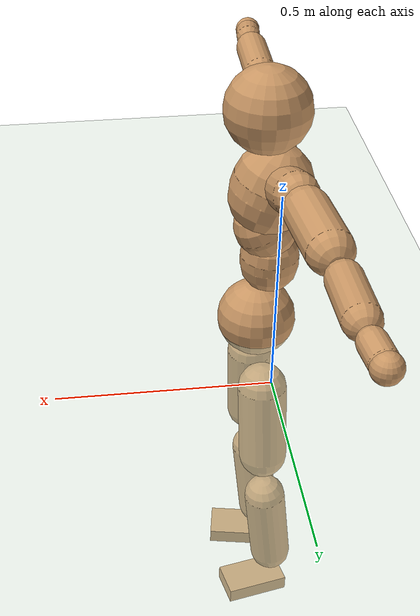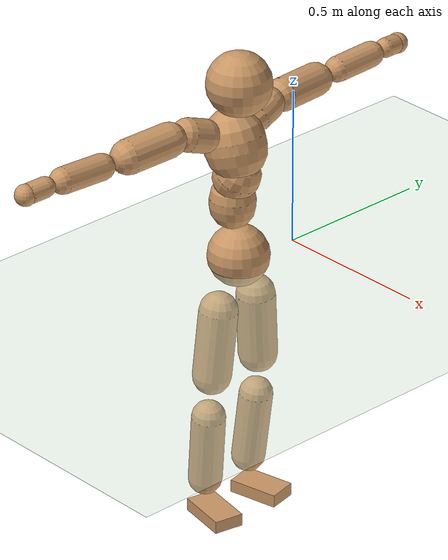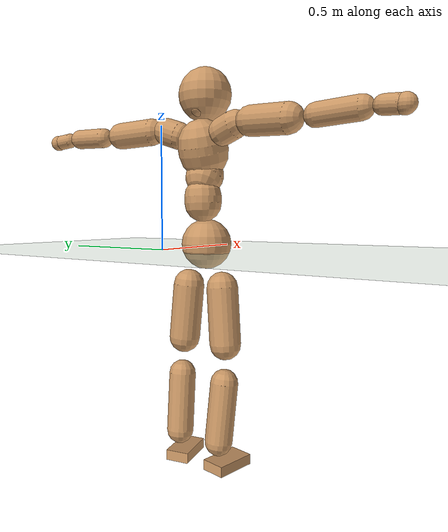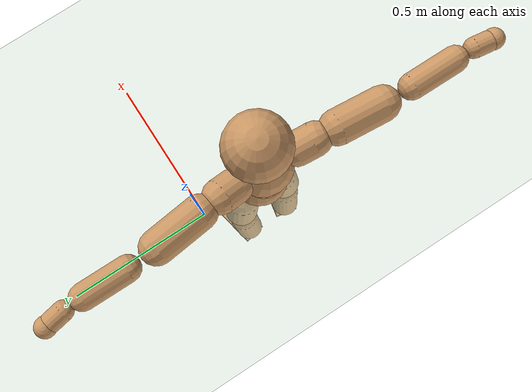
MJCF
<mujoco model="humanoid">
  <compiler coordinate="local"/>
  <default>
    <joint damping="0.0" armature="0.01" stiffness="0.0" limited="true"/>
    <geom conaffinity="1" condim="3" contype="7" margin="0.001" rgba="0.8 0.6 .4 1"/>
  </default>
  <asset>
    <texture type="skybox" builtin="gradient" rgb1=".4 .5 .6" rgb2="0 0 0" width="100" height="100"/>
    <texture builtin="flat" height="1278" mark="cross" markrgb="1 1 1" name="texgeom" random="0.01" rgb1="0.8 0.6 0.4" rgb2="0.8 0.6 0.4" type="cube" width="127"/>
    <texture builtin="checker" height="100" name="texplane" rgb1="0 0 0" rgb2="0.8 0.8 0.8" type="2d" width="100"/>
    <material name="MatPlane" reflectance="0.5" shininess="1" specular="1" texrepeat="60 60" texture="texplane"/>
    <material name="geom" texture="texgeom" texuniform="true"/>
  </asset>
  <worldbody>
    <light cutoff="100" diffuse="1 1 1" dir="-0 0 -1.3" directional="true" exponent="1" pos="0 0 1.3" specular=".1 .1 .1"/>
    <geom conaffinity="1" condim="3" name="floor" pos="0 0 0" rgba="0.8 0.9 0.8 1" size="100 100 .2" type="plane" material="MatPlane"/>
    <body name="Pelvis" pos="-0.0005 -0.2206 0.0321">
      <freejoint name="Pelvis"/>
      <geom type="sphere" contype="1" conaffinity="1" density="500" size="0.0960" pos="0.0000 0.0000 0.0000" name="Pelvis"/>
      <body name="L_Hip" pos="-0.006 0.0726 -0.0912">
        <joint name="L_Hip_x" type="hinge" pos="0 0 0" axis="1 0 0" stiffness="800" damping="80" armature="0.02" range="-180.0000 180.0000"/>
        <joint name="L_Hip_y" type="hinge" pos="0 0 0" axis="0 1 0" stiffness="800" damping="80" armature="0.02" range="-180.0000 180.0000"/>
        <joint name="L_Hip_z" type="hinge" pos="0 0 0" axis="0 0 1" stiffness="800" damping="80" armature="0.02" range="-180.0000 180.0000"/>
        <geom type="capsule" contype="1" conaffinity="1" density="500" fromto="-0.0023 0.0055 -0.0712 -0.0092 0.0220 -0.2847" size="0.0608" name="L_Hip"/>
        <body name="L_Knee" pos="-0.0115 0.0274 -0.3559">
          <joint name="L_Knee_x" type="hinge" pos="0 0 0" axis="1 0 0" stiffness="800" damping="80" armature="0.02" range="-180.0000 180.0000"/>
          <joint name="L_Knee_y" type="hinge" pos="0 0 0" axis="0 1 0" stiffness="800" damping="80" armature="0.02" range="-180.0000 180.0000"/>
          <joint name="L_Knee_z" type="hinge" pos="0 0 0" axis="0 0 1" stiffness="800" damping="80" armature="0.02" range="-180.0000 180.0000"/>
          <geom type="capsule" contype="1" conaffinity="1" density="500" fromto="-0.0087 -0.0023 -0.0755 -0.0348 -0.0094 -0.3022" size="0.0528" name="L_Knee"/>
          <body name="L_Ankle" pos="-0.0435 -0.0117 -0.3777">
            <joint name="L_Ankle_x" type="hinge" pos="0 0 0" axis="1 0 0" stiffness="800" damping="80" armature="0.02" range="-180.0000 180.0000"/>
            <joint name="L_Ankle_y" type="hinge" pos="0 0 0" axis="0 1 0" stiffness="800" damping="80" armature="0.02" range="-180.0000 180.0000"/>
            <joint name="L_Ankle_z" type="hinge" pos="0 0 0" axis="0 0 1" stiffness="800" damping="80" armature="0.02" range="-180.0000 180.0000"/>
            <geom type="box" contype="1" conaffinity="1" density="500" pos="0.0569 0.0116 -0.0273" size="0.0814 0.0463 0.0205" quat="0.9950 0.0000 0.0000 0.1001" name="L_Ankle"/>
            <body name="L_Toe" pos="0.1138 0.0232 -0.0545">
              <joint name="L_Toe_x" type="hinge" pos="0 0 0" axis="1 0 0" stiffness="500" damping="50" armature="0.02" range="-180.0000 180.0000"/>
              <joint name="L_Toe_y" type="hinge" pos="0 0 0" axis="0 1 0" stiffness="500" damping="50" armature="0.02" range="-180.0000 180.0000"/>
              <joint name="L_Toe_z" type="hinge" pos="0 0 0" axis="0 0 1" stiffness="500" damping="50" armature="0.02" range="-180.0000 180.0000"/>
              <geom type="box" contype="1" conaffinity="1" density="500" pos="0.0000 0.0000 0.0265" size="0.001 0.0023 0.001" quat="0.9943 0.0000 0.0000 0.1067" name="L_Toe"/>
            </body>
          </body>
        </body>
      </body>
      <body name="R_Hip" pos="-0.0026 -0.07 -0.0912">
        <joint name="R_Hip_x" type="hinge" pos="0 0 0" axis="1 0 0" stiffness="800" damping="80" armature="0.02" range="-180.0000 180.0000"/>
        <joint name="R_Hip_y" type="hinge" pos="0 0 0" axis="0 1 0" stiffness="800" damping="80" armature="0.02" range="-180.0000 180.0000"/>
        <joint name="R_Hip_z" type="hinge" pos="0 0 0" axis="0 0 1" stiffness="800" damping="80" armature="0.02" range="-180.0000 180.0000"/>
        <geom type="capsule" contype="1" conaffinity="1" density="500" fromto="-0.0027 -0.0067 -0.0724 -0.0107 -0.0268 -0.2894" size="0.0601" name="R_Hip"/>
        <body name="R_Knee" pos="-0.0134 -0.0335 -0.3618">
          <joint name="R_Knee_x" type="hinge" pos="0 0 0" axis="1 0 0" stiffness="800" damping="80" armature="0.02" range="-180.0000 180.0000"/>
          <joint name="R_Knee_y" type="hinge" pos="0 0 0" axis="0 1 0" stiffness="800" damping="80" armature="0.02" range="-180.0000 180.0000"/>
          <joint name="R_Knee_z" type="hinge" pos="0 0 0" axis="0 0 1" stiffness="800" damping="80" armature="0.02" range="-180.0000 180.0000"/>
          <geom type="capsule" contype="1" conaffinity="1" density="500" fromto="-0.0084 0.0029 -0.0757 -0.0335 0.0114 -0.3029" size="0.0531" name="R_Knee"/>
          <body name="R_Ankle" pos="-0.0419 0.0143 -0.3786">
            <joint name="R_Ankle_x" type="hinge" pos="0 0 0" axis="1 0 0" stiffness="800" damping="80" armature="0.02" range="-180.0000 180.0000"/>
            <joint name="R_Ankle_y" type="hinge" pos="0 0 0" axis="0 1 0" stiffness="800" damping="80" armature="0.02" range="-180.0000 180.0000"/>
            <joint name="R_Ankle_z" type="hinge" pos="0 0 0" axis="0 0 1" stiffness="800" damping="80" armature="0.02" range="-180.0000 180.0000"/>
            <geom type="box" contype="1" conaffinity="1" density="500" pos="0.0589 -0.0111 -0.0231" size="0.0828 0.0469 0.0202" quat="0.9956 0.0000 0.0000 -0.0933" name="R_Ankle"/>
            <body name="R_Toe" pos="0.1178 -0.0223 -0.0462">
              <joint name="R_Toe_x" type="hinge" pos="0 0 0" axis="1 0 0" stiffness="500" damping="50" armature="0.02" range="-180.0000 180.0000"/>
              <joint name="R_Toe_y" type="hinge" pos="0 0 0" axis="0 1 0" stiffness="500" damping="50" armature="0.02" range="-180.0000 180.0000"/>
              <joint name="R_Toe_z" type="hinge" pos="0 0 0" axis="0 0 1" stiffness="500" damping="50" armature="0.02" range="-180.0000 180.0000"/>
              <geom type="box" contype="1" conaffinity="1" density="500" pos="0.0000 0.0000 0.0250" size="0.0009 0.0023 0.0011" quat="0.9965 0.0000 0.0000 -0.0837" name="R_Toe"/>
            </body>
          </body>
        </body>
      </body>
      <body name="Torso" pos="-0.0248 -0.0025 0.1053">
        <joint name="Torso_x" type="hinge" pos="0 0 0" axis="1 0 0" stiffness="1000" damping="100" armature="0.02" range="-180.0000 180.0000"/>
        <joint name="Torso_y" type="hinge" pos="0 0 0" axis="0 1 0" stiffness="1000" damping="100" armature="0.02" range="-180.0000 180.0000"/>
        <joint name="Torso_z" type="hinge" pos="0 0 0" axis="0 0 1" stiffness="1000" damping="100" armature="0.02" range="-180.0000 180.0000"/>
        <geom type="capsule" contype="1" conaffinity="1" density="500" fromto="-0.0006 0.0021 0.0764 -0.0004 0.0014 0.0509" size="0.070587" name="Torso"/>
        <body name="Spine" pos="-0.0009 0.0034 0.1273">
          <joint name="Spine_x" type="hinge" pos="0 0 0" axis="1 0 0" stiffness="1000" damping="100" armature="0.02" range="-180.0000 180.0000"/>
          <joint name="Spine_y" type="hinge" pos="0 0 0" axis="0 1 0" stiffness="1000" damping="100" armature="0.02" range="-180.0000 180.0000"/>
          <joint name="Spine_z" type="hinge" pos="0 0 0" axis="0 0 1" stiffness="1000" damping="100" armature="0.02" range="-180.0000 180.0000"/>
          <geom type="capsule" contype="1" conaffinity="1" density="500" fromto="0.0184 0.0014 0.0304 0.0122 0.0009 0.0203" size="0.072075" name="Spine"/>
          <body name="Chest" pos="0.0306 0.0023 0.0507">
            <joint name="Chest_x" type="hinge" pos="0 0 0" axis="1 0 0" stiffness="1000" damping="100" armature="0.02" range="-180.0000 180.0000"/>
            <joint name="Chest_y" type="hinge" pos="0 0 0" axis="0 1 0" stiffness="1000" damping="100" armature="0.02" range="-180.0000 180.0000"/>
            <joint name="Chest_z" type="hinge" pos="0 0 0" axis="0 0 1" stiffness="1000" damping="100" armature="0.02" range="-180.0000 180.0000"/>
            <geom type="capsule" contype="1" conaffinity="1" density="500" fromto="-0.0293 -0.0004 0.0926 -0.0195 -0.0003 0.0617" size="0.094674" name="Chest"/>
            <body name="Neck" pos="-0.0591 -0.0006 0.2169">
              <joint name="Neck_x" type="hinge" pos="0 0 0" axis="1 0 0" stiffness="500" damping="50" armature="0.02" range="-180.0000 180.0000"/>
              <joint name="Neck_y" type="hinge" pos="0 0 0" axis="0 1 0" stiffness="500" damping="50" armature="0.02" range="-180.0000 180.0000"/>
              <joint name="Neck_z" type="hinge" pos="0 0 0" axis="0 0 1" stiffness="500" damping="50" armature="0.02" range="-180.0000 180.0000"/>
              <geom type="capsule" contype="1" conaffinity="1" density="500" fromto="0.0100 0.0006 0.0121 0.0401 0.0022 0.0485" size="0.039711" name="Neck"/>
              <body name="Head" pos="0.0502 0.0028 0.0607">
                <joint name="Head_x" type="hinge" pos="0 0 0" axis="1 0 0" stiffness="500" damping="50" armature="0.02" range="-180.0000 180.0000"/>
                <joint name="Head_y" type="hinge" pos="0 0 0" axis="0 1 0" stiffness="500" damping="50" armature="0.02" range="-180.0000 180.0000"/>
                <joint name="Head_z" type="hinge" pos="0 0 0" axis="0 0 1" stiffness="500" damping="50" armature="0.02" range="-180.0000 180.0000"/>
                <geom type="sphere" contype="1" conaffinity="1" density="500" size="0.1004" pos="0.0000 0.0000 0.0000" name="Head"/>
              </body>
            </body>
            <body name="L_Thorax" pos="-0.0411 0.0812 0.1243">
              <joint name="L_Thorax_x" type="hinge" pos="0 0 0" axis="1 0 0" stiffness="500" damping="50" armature="0.02" range="-180.0000 180.0000"/>
              <joint name="L_Thorax_y" type="hinge" pos="0 0 0" axis="0 1 0" stiffness="500" damping="50" armature="0.02" range="-180.0000 180.0000"/>
              <joint name="L_Thorax_z" type="hinge" pos="0 0 0" axis="0 0 1" stiffness="500" damping="50" armature="0.02" range="-180.0000 180.0000"/>
              <geom type="capsule" contype="1" conaffinity="1" density="500" fromto="-0.0018 0.0181 0.0062 -0.0072 0.0722 0.0249" size="0.0525" name="L_Thorax"/>
              <body name="L_Shoulder" pos="-0.0091 0.0903 0.0311">
                <joint name="L_Shoulder_x" type="hinge" pos="0 0 0" axis="1 0 0" stiffness="500" damping="50" armature="0.02" range="-720.0000 720.0000"/>
                <joint name="L_Shoulder_y" type="hinge" pos="0 0 0" axis="0 1 0" stiffness="500" damping="50" armature="0.02" range="-720.0000 720.0000"/>
                <joint name="L_Shoulder_z" type="hinge" pos="0 0 0" axis="0 0 1" stiffness="500" damping="50" armature="0.02" range="-720.0000 720.0000"/>
                <geom type="capsule" contype="1" conaffinity="1" density="500" fromto="-0.0055 0.0503 -0.0018 -0.0219 0.2011 -0.0070" size="0.0521" name="L_Shoulder"/>
                <body name="L_Elbow" pos="-0.0274 0.2514 -0.0088">
                  <joint name="L_Elbow_x" type="hinge" pos="0 0 0" axis="1 0 0" stiffness="500" damping="50" armature="0.02" range="-720.0000 720.0000"/>
                  <joint name="L_Elbow_y" type="hinge" pos="0 0 0" axis="0 1 0" stiffness="500" damping="50" armature="0.02" range="-720.0000 720.0000"/>
                  <joint name="L_Elbow_z" type="hinge" pos="0 0 0" axis="0 0 1" stiffness="500" damping="50" armature="0.02" range="-720.0000 720.0000"/>
                  <geom type="capsule" contype="1" conaffinity="1" density="500" fromto="0.0001 0.0468 0.0017 0.0003 0.1871 0.0069" size="0.04" name="L_Elbow"/>
                  <body name="L_Wrist" pos="0.0004 0.2338 0.0086">
                    <joint name="L_Wrist_x" type="hinge" pos="0 0 0" axis="1 0 0" stiffness="300" damping="30" armature="0.02" range="-180.0000 180.0000"/>
                    <joint name="L_Wrist_y" type="hinge" pos="0 0 0" axis="0 1 0" stiffness="300" damping="30" armature="0.02" range="-180.0000 180.0000"/>
                    <joint name="L_Wrist_z" type="hinge" pos="0 0 0" axis="0 0 1" stiffness="300" damping="30" armature="0.02" range="-180.0000 180.0000"/>
                    <geom type="capsule" contype="1" conaffinity="1" density="500" fromto="-0.0026 0.0160 -0.0019 -0.0105 0.0641 -0.0076" size="0.0306" name="L_Wrist"/>
                    <body name="L_Hand" pos="-0.0131 0.0802 -0.0095">
                      <joint name="L_Hand_x" type="hinge" pos="0 0 0" axis="1 0 0" stiffness="300" damping="30" armature="0.02" range="-180.0000 180.0000"/>
                      <joint name="L_Hand_y" type="hinge" pos="0 0 0" axis="0 1 0" stiffness="300" damping="30" armature="0.02" range="-180.0000 180.0000"/>
                      <joint name="L_Hand_z" type="hinge" pos="0 0 0" axis="0 0 1" stiffness="300" damping="30" armature="0.02" range="-180.0000 180.0000"/>
                      <geom type="sphere" contype="1" conaffinity="1" density="500" size="0.0324" pos="0.0000 0.0000 0.0000" name="L_Hand"/>
                    </body>
                  </body>
                </body>
              </body>
            </body>
            <body name="R_Thorax" pos="-0.0463 -0.0827 0.1215">
              <joint name="R_Thorax_x" type="hinge" pos="0 0 0" axis="1 0 0" stiffness="500" damping="50" armature="0.02" range="-180.0000 180.0000"/>
              <joint name="R_Thorax_y" type="hinge" pos="0 0 0" axis="0 1 0" stiffness="500" damping="50" armature="0.02" range="-180.0000 180.0000"/>
              <joint name="R_Thorax_z" type="hinge" pos="0 0 0" axis="0 0 1" stiffness="500" damping="50" armature="0.02" range="-180.0000 180.0000"/>
              <geom type="capsule" contype="1" conaffinity="1" density="500" fromto="-0.0024 -0.0189 0.0066 -0.0096 -0.0755 0.0265" size="0.0517" name="R_Thorax"/>
              <body name="R_Shoulder" pos="-0.0121 -0.0943 0.0331">
                <joint name="R_Shoulder_x" type="hinge" pos="0 0 0" axis="1 0 0" stiffness="500" damping="50" armature="0.02" range="-720.0000 720.0000"/>
                <joint name="R_Shoulder_y" type="hinge" pos="0 0 0" axis="0 1 0" stiffness="500" damping="50" armature="0.02" range="-720.0000 720.0000"/>
                <joint name="R_Shoulder_z" type="hinge" pos="0 0 0" axis="0 0 1" stiffness="500" damping="50" armature="0.02" range="-720.0000 720.0000"/>
                <geom type="capsule" contype="1" conaffinity="1" density="500" fromto="-0.0040 -0.0495 -0.0026 -0.0159 -0.1979 -0.0103" size="0.0539" name="R_Shoulder"/>
                <body name="R_Elbow" pos="-0.0199 -0.2473 -0.0129">
                  <joint name="R_Elbow_x" type="hinge" pos="0 0 0" axis="1 0 0" stiffness="500" damping="50" armature="0.02" range="-720.0000 720.0000"/>
                  <joint name="R_Elbow_y" type="hinge" pos="0 0 0" axis="0 1 0" stiffness="500" damping="50" armature="0.02" range="-720.0000 720.0000"/>
                  <joint name="R_Elbow_z" type="hinge" pos="0 0 0" axis="0 0 1" stiffness="500" damping="50" armature="0.02" range="-720.0000 720.0000"/>
                  <geom type="capsule" contype="1" conaffinity="1" density="500" fromto="-0.0005 -0.0486 0.0020 -0.0021 -0.1943 0.0078" size="0.0405" name="R_Elbow"/>
                  <body name="R_Wrist" pos="-0.0026 -0.2429 0.0098">
                    <joint name="R_Wrist_x" type="hinge" pos="0 0 0" axis="1 0 0" stiffness="300" damping="30" armature="0.02" range="-180.0000 180.0000"/>
                    <joint name="R_Wrist_y" type="hinge" pos="0 0 0" axis="0 1 0" stiffness="300" damping="30" armature="0.02" range="-180.0000 180.0000"/>
                    <joint name="R_Wrist_z" type="hinge" pos="0 0 0" axis="0 0 1" stiffness="300" damping="30" armature="0.02" range="-180.0000 180.0000"/>
                    <geom type="capsule" contype="1" conaffinity="1" density="500" fromto="-0.0021 -0.0163 -0.0015 -0.0085 -0.0653 -0.0058" size="0.0316" name="R_Wrist"/>
                    <body name="R_Hand" pos="-0.0106 -0.0817 -0.0073">
                      <joint name="R_Hand_x" type="hinge" pos="0 0 0" axis="1 0 0" stiffness="300" damping="30" armature="0.02" range="-180.0000 180.0000"/>
                      <joint name="R_Hand_y" type="hinge" pos="0 0 0" axis="0 1 0" stiffness="300" damping="30" armature="0.02" range="-180.0000 180.0000"/>
                      <joint name="R_Hand_z" type="hinge" pos="0 0 0" axis="0 0 1" stiffness="300" damping="30" armature="0.02" range="-180.0000 180.0000"/>
                      <geom type="sphere" contype="1" conaffinity="1" density="500" size="0.0329" pos="0.0000 0.0000 0.0000" name="R_Hand"/>
                    </body>
                  </body>
                </body>
              </body>
            </body>
          </body>
        </body>
      </body>
    </body>
  </worldbody>
  <actuator>
    <motor name="L_Hip_x" joint="L_Hip_x" gear="500"/>
    <motor name="L_Hip_y" joint="L_Hip_y" gear="500"/>
    <motor name="L_Hip_z" joint="L_Hip_z" gear="500"/>
    <motor name="L_Knee_x" joint="L_Knee_x" gear="500"/>
    <motor name="L_Knee_y" joint="L_Knee_y" gear="500"/>
    <motor name="L_Knee_z" joint="L_Knee_z" gear="500"/>
    <motor name="L_Ankle_x" joint="L_Ankle_x" gear="500"/>
    <motor name="L_Ankle_y" joint="L_Ankle_y" gear="500"/>
    <motor name="L_Ankle_z" joint="L_Ankle_z" gear="500"/>
    <motor name="L_Toe_x" joint="L_Toe_x" gear="500"/>
    <motor name="L_Toe_y" joint="L_Toe_y" gear="500"/>
    <motor name="L_Toe_z" joint="L_Toe_z" gear="500"/>
    <motor name="R_Hip_x" joint="R_Hip_x" gear="500"/>
    <motor name="R_Hip_y" joint="R_Hip_y" gear="500"/>
    <motor name="R_Hip_z" joint="R_Hip_z" gear="500"/>
    <motor name="R_Knee_x" joint="R_Knee_x" gear="500"/>
    <motor name="R_Knee_y" joint="R_Knee_y" gear="500"/>
    <motor name="R_Knee_z" joint="R_Knee_z" gear="500"/>
    <motor name="R_Ankle_x" joint="R_Ankle_x" gear="500"/>
    <motor name="R_Ankle_y" joint="R_Ankle_y" gear="500"/>
    <motor name="R_Ankle_z" joint="R_Ankle_z" gear="500"/>
    <motor name="R_Toe_x" joint="R_Toe_x" gear="500"/>
    <motor name="R_Toe_y" joint="R_Toe_y" gear="500"/>
    <motor name="R_Toe_z" joint="R_Toe_z" gear="500"/>
    <motor name="Torso_x" joint="Torso_x" gear="500"/>
    <motor name="Torso_y" joint="Torso_y" gear="500"/>
    <motor name="Torso_z" joint="Torso_z" gear="500"/>
    <motor name="Spine_x" joint="Spine_x" gear="500"/>
    <motor name="Spine_y" joint="Spine_y" gear="500"/>
    <motor name="Spine_z" joint="Spine_z" gear="500"/>
    <motor name="Chest_x" joint="Chest_x" gear="500"/>
    <motor name="Chest_y" joint="Chest_y" gear="500"/>
    <motor name="Chest_z" joint="Chest_z" gear="500"/>
    <motor name="Neck_x" joint="Neck_x" gear="500"/>
    <motor name="Neck_y" joint="Neck_y" gear="500"/>
    <motor name="Neck_z" joint="Neck_z" gear="500"/>
    <motor name="Head_x" joint="Head_x" gear="500"/>
    <motor name="Head_y" joint="Head_y" gear="500"/>
    <motor name="Head_z" joint="Head_z" gear="500"/>
    <motor name="L_Thorax_x" joint="L_Thorax_x" gear="500"/>
    <motor name="L_Thorax_y" joint="L_Thorax_y" gear="500"/>
    <motor name="L_Thorax_z" joint="L_Thorax_z" gear="500"/>
    <motor name="L_Shoulder_x" joint="L_Shoulder_x" gear="500"/>
    <motor name="L_Shoulder_y" joint="L_Shoulder_y" gear="500"/>
    <motor name="L_Shoulder_z" joint="L_Shoulder_z" gear="500"/>
    <motor name="L_Elbow_x" joint="L_Elbow_x" gear="500"/>
    <motor name="L_Elbow_y" joint="L_Elbow_y" gear="500"/>
    <motor name="L_Elbow_z" joint="L_Elbow_z" gear="500"/>
    <motor name="L_Wrist_x" joint="L_Wrist_x" gear="500"/>
    <motor name="L_Wrist_y" joint="L_Wrist_y" gear="500"/>
    <motor name="L_Wrist_z" joint="L_Wrist_z" gear="500"/>
    <motor name="L_Hand_x" joint="L_Hand_x" gear="500"/>
    <motor name="L_Hand_y" joint="L_Hand_y" gear="500"/>
    <motor name="L_Hand_z" joint="L_Hand_z" gear="500"/>
    <motor name="R_Thorax_x" joint="R_Thorax_x" gear="500"/>
    <motor name="R_Thorax_y" joint="R_Thorax_y" gear="500"/>
    <motor name="R_Thorax_z" joint="R_Thorax_z" gear="500"/>
    <motor name="R_Shoulder_x" joint="R_Shoulder_x" gear="500"/>
    <motor name="R_Shoulder_y" joint="R_Shoulder_y" gear="500"/>
    <motor name="R_Shoulder_z" joint="R_Shoulder_z" gear="500"/>
    <motor name="R_Elbow_x" joint="R_Elbow_x" gear="500"/>
    <motor name="R_Elbow_y" joint="R_Elbow_y" gear="500"/>
    <motor name="R_Elbow_z" joint="R_Elbow_z" gear="500"/>
    <motor name="R_Wrist_x" joint="R_Wrist_x" gear="500"/>
    <motor name="R_Wrist_y" joint="R_Wrist_y" gear="500"/>
    <motor name="R_Wrist_z" joint="R_Wrist_z" gear="500"/>
    <motor name="R_Hand_x" joint="R_Hand_x" gear="500"/>
    <motor name="R_Hand_y" joint="R_Hand_y" gear="500"/>
    <motor name="R_Hand_z" joint="R_Hand_z" gear="500"/>
  </actuator>
  <contact>
    <exclude body1="Torso" body2="Chest"/>
    <exclude body1="Head" body2="Chest"/>
    <exclude body1="R_Knee" body2="R_Toe"/>
    <exclude body1="R_Knee" body2="L_Ankle"/>
    <exclude body1="R_Knee" body2="L_Toe"/>
    <exclude body1="L_Knee" body2="L_Toe"/>
    <exclude body1="L_Knee" body2="R_Ankle"/>
    <exclude body1="L_Knee" body2="R_Toe"/>
    <exclude body1="L_Shoulder" body2="Chest"/>
    <exclude body1="R_Shoulder" body2="Chest"/>
  </contact>
  <sensor/>
  <size njmax="700" nconmax="700"/>
</mujoco>
